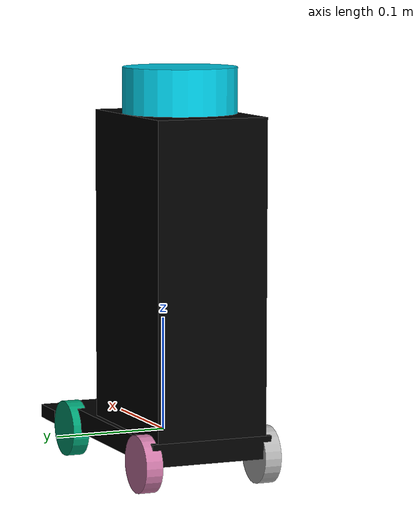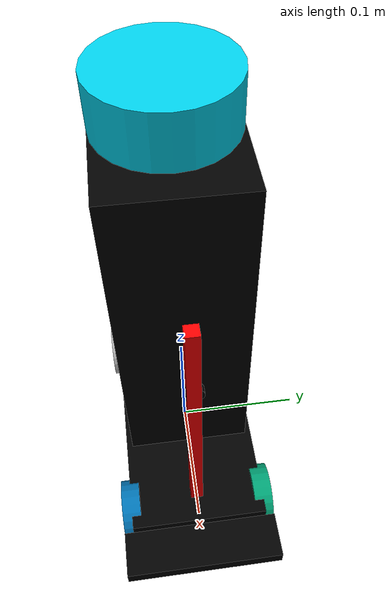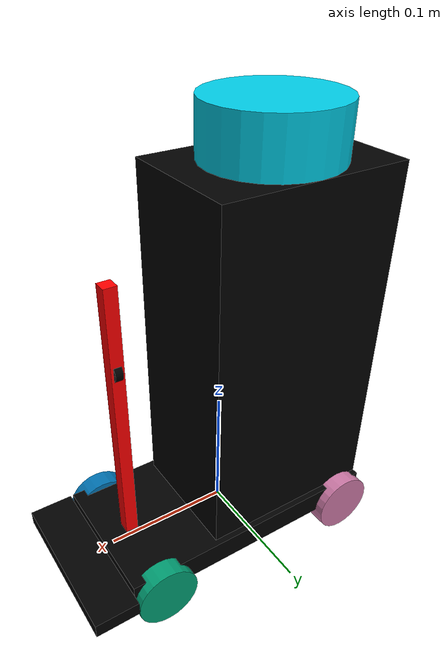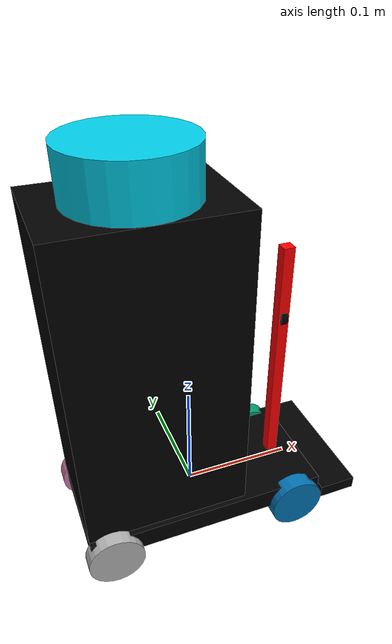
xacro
<?xml version='1.0' ?>

<robot name="jetracer" xmlns:xacro="http://www.ros.org/wiki/xacro">

    <material name="black">
        <color rgba="0 0 0 1"/>
    </material>
    <!-- Main Base -->
    <link name="base_link">
        <visual>
            <origin rpy="0 0 0" xyz="0 0 0"/>
            <geometry>
                <box size="0.22 0.11 0.02"/>
            </geometry>
            <material name="black">
                <color rgba="0 0 0 1"/>
            </material>
        </visual>

        <collision>
            <origin rpy="0 0 0" xyz="0 0 0"/>
            <geometry>
                <box size="0.22 0.11 0.02"/>
            </geometry>
        </collision>
    </link>

    <joint name="base_inertial_joint" type="fixed">
        <origin rpy="0 0 0" xyz="0 0 0"/>
        <parent link="base_link"/>
        <child link="base_inertial"/>
    </joint>
    <link name="base_inertial">
        <inertial>
            <mass value="1.166"/>
            <inertia ixx="0.004742" iyy="0.005879" izz="0.001215" ixy="0" ixz="0" iyz="0"/>
        </inertial>
    </link>

    <!-- Xacro Macro: Unsteerable Wheel -->
    <xacro:macro name="rear_wheel" params="prefix x y">
        <joint name="${prefix}_wheel_joint" type="continuous">
            <axis xyz="0 0 1"/>
            <origin rpy="-1.57 0.0 0.0" xyz="${x} ${y} -0.01"/>
            <parent link="base_link"/>
            <child link="${prefix}_wheel"/>
        </joint>

        <link name="${prefix}_wheel">
            <inertial>
                <mass value="0.07"/>
                <inertia ixx="0.00001225" iyy="0.00001225" izz="0.00002184" ixy="0" ixz="0" iyz="0"/>
            </inertial>
            <visual>
                <origin xyz="0.0 0.0 0.0" rpy="0.0 0.0 0.0"/>
                <geometry>
                    <cylinder radius="0.025" length="0.015"/>
                </geometry>
            </visual>
            <collision>
                <origin xyz="0.0 0.0 0.0" rpy="0.0 0.0 0.0"/>
                <geometry>
                    <cylinder radius="0.025" length="0.015"/>
                </geometry>
            </collision>
        </link>
    </xacro:macro>

    <!-- Xacro Macro: Steerable Wheel -->
    <xacro:macro name="front_wheel" params="prefix x y">
        <joint name="${prefix}_base_holder" type="revolute">
            <limit lower="-0.322" upper="0.322" effort="1000.0" velocity="0.5"/>
            <axis xyz="0 0 1"/>
            <origin rpy="0.0 0.0 0.0" xyz="${x} ${y} -0.01"/>
            <parent link="base_link"/>
            <child link="${prefix}_holder"/>
        </joint>

        <joint name="${prefix}_wheel_holder" type="continuous">
            <axis xyz="0 0 1"/>
            <origin rpy="-1.57 0.0 0.0" xyz="0 0 0"/>
            <parent link="${prefix}_holder"/>
            <child link="${prefix}_wheel"/>
        </joint>

        <link name="${prefix}_wheel">
            <inertial>
                <mass value="0.07"/>
                <inertia ixx="0.00001225" iyy="0.00001225" izz="0.00002184" ixy="0" ixz="0" iyz="0"/>
            </inertial>
            <visual>
                <origin xyz="0.0 0.0 0.0" rpy="0.0 0.0 0.0"/>
                <geometry>
                    <cylinder radius="0.025" length="0.015"/>
                </geometry>
            </visual>
            <collision>
                <origin xyz="0.0 0.0 0.0" rpy="0.0 0.0 0.0"/>
                <geometry>
                    <cylinder radius="0.025" length="0.015"/>
                </geometry>
            </collision>
        </link>

        <link name="${prefix}_holder">
            <inertial>
                <origin xyz="0.0 0.0 0.0" rpy="0.0 0.0 0.0"/>
                <mass value="0.001"/>
                <inertia ixx="0.0000001" iyy="0.0000001" izz="0.0000001" ixy="0.0" iyz="0.0" ixz="0.0"/>
            </inertial>
            <visual name="">
                <origin xyz="0.01 0.01 0.01" rpy="0.0 0.0 0.0"/>
                <geometry>
                    <box size="0.0 0.0 0.0"/>
                </geometry>
            </visual>
            <collision>
                <origin xyz="0.0 0.0 0.0" rpy="0.0 0.0 0.0"/>
                <geometry>
                    <box size="0.01 0.01 0.01"/>
                </geometry>
            </collision>
        </link>
    </xacro:macro>

    <!-- Front Wheel -->
    <xacro:front_wheel prefix="front_left" x="0.085" y="0.055"/>
    <xacro:front_wheel prefix="front_right" x="0.085" y="-0.055"/>
    <!-- Rear Wheel -->
    <xacro:rear_wheel prefix="rear_left" x="-0.09" y="0.055"/>
    <xacro:rear_wheel prefix="rear_right" x="-0.09" y="-0.055"/>

    <!-- Head -->
    <joint name="head_joint" type="fixed">
        <origin xyz="0.1275 0.0 -0.004" rpy="0.0 0.0 0.0"/>
        <parent link="base_link"/>
        <child link="head"/>
    </joint>

    <link name="head">
        <inertial>
            <origin xyz="0.0 0.0 0.0" rpy="0.0 0.0 0.0"/>
            <mass value="0.05"/>
            <inertia ixx="0.0000057" iyy="0.0000702" izz="0.0000657" ixy="0" ixz="0" iyz="0"/>
        </inertial>
        <visual>
            <origin xyz="0.0 0.0 0.0" rpy="0.0 0.0 0.0"/>
            <geometry>
                <box size="0.035 0.125 0.012"/>
            </geometry>
            <material name="black">
                <color rgba="0 0 0 1"/>
            </material>
        </visual>
        <collision>
            <origin xyz="0.0 0.0 0.0" rpy="0.0 0.0 0.0"/>
            <geometry>
                <box size="0.035 0.125 0.012"/>
            </geometry>
        </collision>
    </link>
    <!-- Camera -->
    <joint name="camera_mount_joint" type="fixed">
        <origin xyz="0.085 0.0 0.10233622380397495" rpy="0.0 0.0 0.0"/>
        <parent link="base_link"/>
        <child link="camera_mount"/>
    </joint>
    <link name="camera_mount">
        <inertial>
            <origin xyz="0.0 0.0 0.0" rpy="0.0 0.0 0.0"/>
            <mass value="0.001"/>
            <inertia ixx="0.0000001" iyy="0.0000001" izz="0.0000001" ixy="0" ixz="0" iyz="0"/>
        </inertial>
        <visual>
            <origin xyz="0.0 0.0 0.0" rpy="0.0 0.0 0.0"/>
            <geometry>
                <box size="0.01 0.01 0.25"/>
            </geometry>
            <material name="mount_red">
                <color rgba="1.0 0.0 0.0 1.0"/>
            </material>
        </visual>
        <collision>
            <origin xyz="0.0 0.0 0.0" rpy="0.0 0.0 0.0"/>
            <geometry>
                <box size="0.01 0.01 0.25"/>
            </geometry>
        </collision>
    </link>

    <joint name="camera_joint" type="fixed">
        <origin xyz="0 0 0.06" rpy="0 1.5708 0"/>
        <parent link="camera_mount"/>
        <child link="camera"/>
    </joint>
    <link name="camera">
        <inertial>
            <origin xyz="0 0 0" rpy="0 0 0"/>
            <mass value="0.001"/>
            <inertia ixx="0.0000001" iyy="0.0000001" izz="0.0000001" ixy="0" ixz="0" iyz="0"/>
        </inertial>
        <visual>
            <origin xyz="0 0 0" rpy="0 0 0"/>
            <geometry>
                <cylinder radius="0.0075" length="0.006"/>
            </geometry>
            <material name="camera_black">
                <color rgba="0 0 0 1"/>
            </material>
        </visual>
        <collision>
            <origin xyz="0 0 0" rpy="0 0 0"/>
            <geometry>
                <cylinder radius="0.0075" length="0.006"/>
            </geometry>
        </collision>
    </link>
    <!-- Board -->
    <joint name="board_joint" type="fixed">
        <origin xyz="-0.0375 0.0 0.14614899660969316" rpy="0.0 0.0 0.0"/>
        <parent link="base_link"/>
        <child link="board"/>
    </joint>

    <link name="board">
        <visual>
            <origin xyz="0 0 0" rpy="0 0 0"/>
            <geometry>
                <box size="0.145 0.10 0.275"/>
            </geometry>
            <material name="black">
                <color rgba="0 0 0 1"/>
            </material>
        </visual>
        <collision>
            <origin xyz="0 0 0" rpy="0 0 0"/>
            <geometry>
                <box size="0.145 0.10 0.275"/>
            </geometry>
        </collision>
        <inertial>
            <mass value="0.001"/>
            <inertia ixx="0.0000001" iyy="0.0000001" izz="0.0000001" ixy="0" ixz="0" iyz="0"/>
        </inertial>
    </link>
    <!-- LiDAR -->
    <joint name="lidar_joint" type="fixed">
        <origin xyz="0.0 0.0 0.1575" rpy="0.0 0.0 0.0"/>
        <parent link="board"/>
        <child link="lidar"/>
    </joint>
    <link name="lidar">
        <inertial>
            <origin xyz="0.0 0.0 0.0" rpy="0.0 0.0 0.0"/>
            <mass value="0.001"/>
            <inertia ixx="0.0000001" iyy="0.0000001" izz="0.0000001" ixy="0" ixz="0" iyz="0"/>
        </inertial>
        <visual>
            <origin xyz="0.0 0.0 0.0" rpy="0.0 0.0 0.0"/>
            <geometry>
                <cylinder radius="0.05" length="0.04"/>
            </geometry>
            <material name="lidar_cyan">
                <color rgba="0.0 0.8 0.9 1.0"/>
            </material>
        </visual>
        <collision>
            <origin xyz="0.0 0.0 0.0" rpy="0.0 0.0 0.0"/>
            <geometry>
                <cylinder radius="0.05" length="0.04"/>
            </geometry>
        </collision>
    </link>
</robot>
